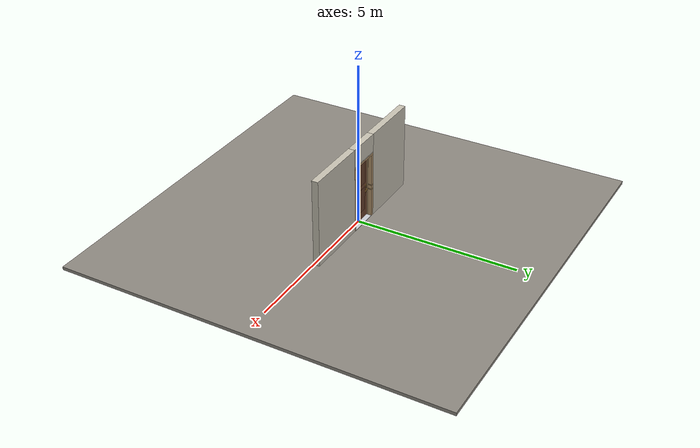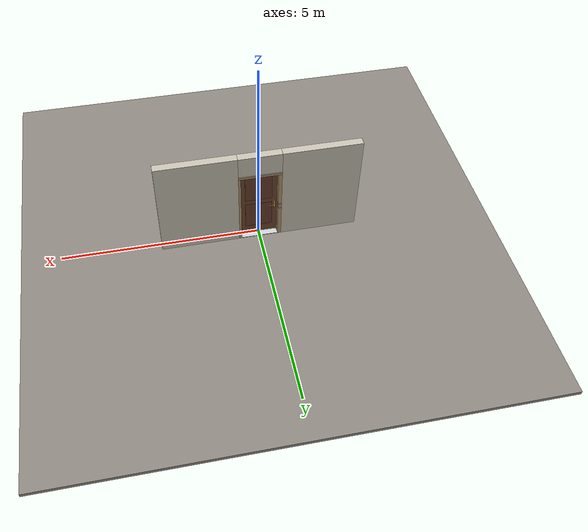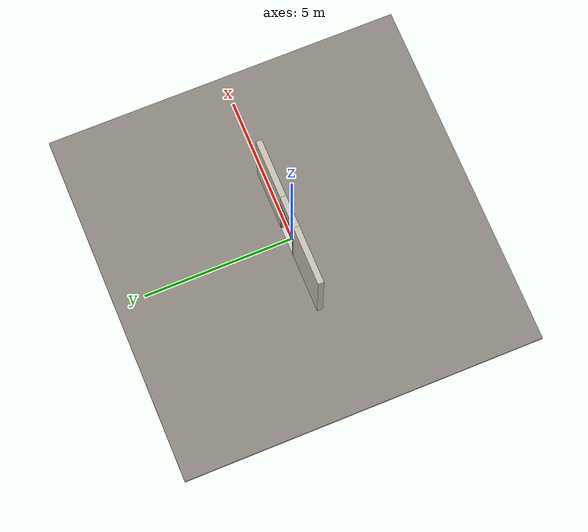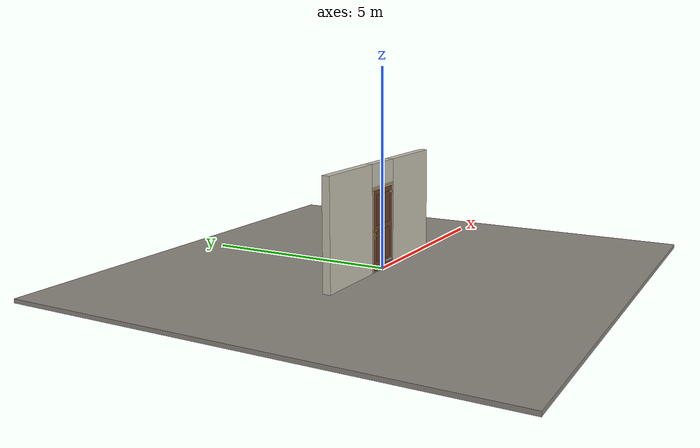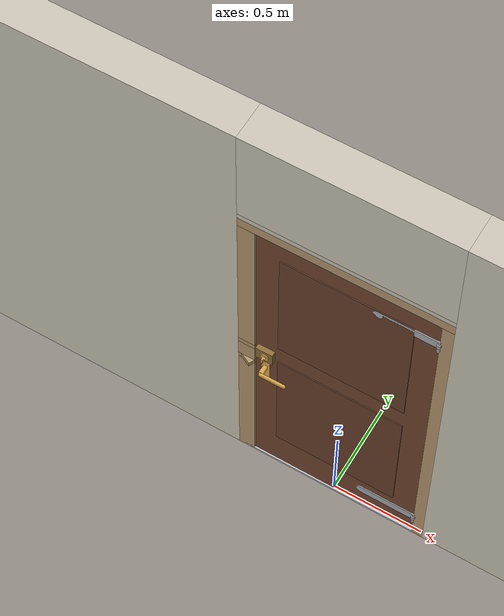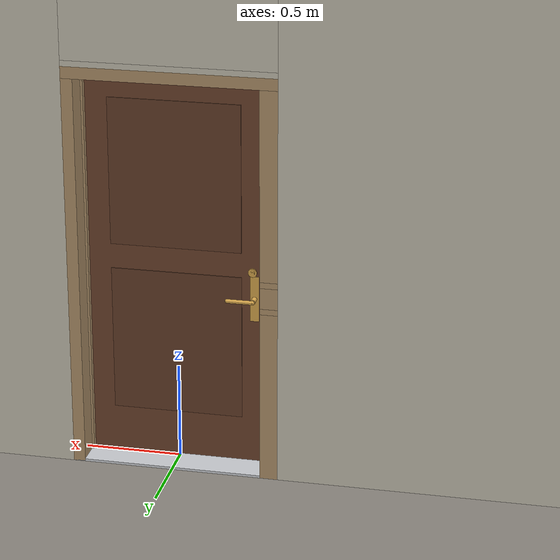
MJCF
<?xml version="1.0" ?>
<mujoco model="db0889_swing_single_full">
  <compiler angle="radian" meshdir="../../hardware" texturedir="../../textures" autolimits="true" inertiafromgeom="false"/>
  <option timestep="0.002" integrator="implicitfast" cone="elliptic" impratio="10" noslip_iterations="3">
    <flag multiccd="enable"/>
  </option>
  <size memory="16M"/>
  <default>
    <geom condim="4" solref="0.005 1" solimp="0.95 0.99 0.001"/>
    <joint solreflimit="0.005 1" solimplimit="0.95 0.99 0.001"/>
    <tendon solreflimit="0.005 1"/>
    <equality solref="0.002 1"/>
  </default>
  <visual>
    <headlight ambient="0.4 0.4 0.4" diffuse="0.7 0.7 0.7" specular="0.2 0.2 0.2"/>
    <quality shadowsize="4096"/>
    <map znear="0.01" zfar="60"/>
  </visual>
  <asset>
    <mesh name="cyl_face_e9e5036966" file="cyl_face_e9e5036966.obj"/>
    <mesh name="lever_6fbb1e9593" file="lever_6fbb1e9593.obj"/>
    <mesh name="strap_hinge_78d1bbb966" file="strap_hinge_78d1bbb966.obj"/>
    <mesh name="thumbturn_eb5c9899a3" file="thumbturn_eb5c9899a3.obj"/>
    <material name="mat_floor" rgba="0.55 0.53 0.5 1" specular="0.2" shininess="0.15" reflectance="0"/>
    <material name="mat_wall" rgba="0.78 0.76 0.7 1" specular="0.2" shininess="0.1" reflectance="0"/>
    <material name="mat_leaf" rgba="0.43 0.263 0.177 1" specular="0.2" shininess="0.4" reflectance="0"/>
    <material name="mat_leaf_panel" rgba="0.396 0.242 0.163 1" specular="0.2" shininess="0.4" reflectance="0"/>
    <material name="mat_hinge" rgba="0.65 0.66 0.68 1" specular="0.74" shininess="0.5" reflectance="0.36"/>
    <material name="mat_op_brass" rgba="0.85 0.66 0.3 1" specular="0.8" shininess="0.75" reflectance="0.4"/>
    <material name="mat_trim" rgba="0.85 0.66 0.3 1" specular="0.8" shininess="0.75" reflectance="0.4"/>
    <material name="mat_bolt" rgba="0.75 0.76 0.77 1" specular="0.8" shininess="0.65" reflectance="0.4"/>
    <material name="mat_night_latch" rgba="0.55 0.42 0.22 1" specular="0.74" shininess="0.45" reflectance="0.36"/>
    <material name="mat_deadbolt" rgba="0.85 0.66 0.3 1" specular="0.8" shininess="0.75" reflectance="0.4"/>
    <material name="mat_frame" rgba="0.7 0.58 0.42 1" specular="0.2" shininess="0.5" reflectance="0"/>
    <material name="mat_threshold" rgba="0.8 0.81 0.83 1" specular="0.8" shininess="0.6" reflectance="0.4"/>
    <texture name="skybox" type="skybox" builtin="gradient" rgb1="0.6 0.7 0.85" rgb2="0.9 0.92 0.95" width="256" height="256"/>
  </asset>
  <worldbody>
    <light name="sun" pos="1.5 -2.5 4" dir="-0.3 0.5 -0.8" directional="true" diffuse="0.8 0.8 0.8" specular="0.3 0.3 0.3" castshadow="true"/>
    <light name="fill" pos="-1.5 2.5 3" dir="0.3 -0.5 -0.7" directional="true" diffuse="0.35 0.35 0.4" castshadow="false"/>
    <camera name="robot_view" pos="0 -2.466687 1.734312" xyaxes="1 0 0 0 0.26963 0.962964" fovy="52"/>
    <camera name="far_view" pos="0 2.617687 1.734312" xyaxes="-1 0 0 0 -0.26963 0.962964" fovy="52"/>
    <camera name="iso" pos="-1.932062 -2.059938 2.141063" xyaxes="0.741536 -0.670913 0 0.242917 0.268487 0.932151" fovy="46"/>
    <camera name="detail_handle" pos="-0.1175 -0.8725 1.194" xyaxes="0.97561 0.219512 0 -0.070934 0.315262 0.94635" fovy="38"/>
    <geom name="floor" type="box" size="6 6 0.05" pos="0 0 -0.05" material="mat_floor" group="0" contype="1" conaffinity="1" friction="0.8 0.005 0.0001" density="2400"/>
    <geom name="wall_left" type="box" size="0.97475 0.1 1.35" pos="-1.52525 0.0755 1.35" material="mat_wall" group="0" contype="1" conaffinity="1" friction="0.6 0.005 0.0001" density="800"/>
    <geom name="wall_right" type="box" size="0.98975 0.1 1.35" pos="1.51025 0.0755 1.35" material="mat_wall" group="0" contype="1" conaffinity="1" friction="0.6 0.005 0.0001" density="800"/>
    <geom name="wall_header" type="box" size="0.5355 0.1 0.2825" pos="-0.015 0.0755 2.4175" material="mat_wall" group="0" contype="1" conaffinity="1" friction="0.6 0.005 0.0001" density="800"/>
    <geom name="hinge_pintle_0" type="cylinder" size="0.008 0.02" pos="0.4575 -0.0245 0.141" material="mat_hinge" group="1" contype="0" conaffinity="0" density="7850"/>
    <geom name="hinge_pintle_1" type="cylinder" size="0.008 0.02" pos="0.4575 -0.0245 1.865" material="mat_hinge" group="1" contype="0" conaffinity="0" density="7850"/>
    <geom name="leaf_deadbolt_strike_b" type="box" size="0.0155 0.003 0.0005" pos="-0.46 0 1.0355" quat="0.5 0.5 0.5 0.5" material="mat_deadbolt" group="1" contype="0" conaffinity="0" density="7800"/>
    <geom name="leaf_deadbolt_strike_l" type="box" size="0.003 0.0155 0.0005" pos="-0.46 -0.0125 1.054" quat="0.5 0.5 0.5 0.5" material="mat_deadbolt" group="1" contype="0" conaffinity="0" density="7800"/>
    <geom name="leaf_deadbolt_strike_t" type="box" size="0.0155 0.003 0.0005" pos="-0.46 0 1.0725" quat="0.5 0.5 0.5 0.5" material="mat_deadbolt" group="1" contype="0" conaffinity="0" density="7800"/>
    <geom name="leaf_deadbolt_strike_r" type="box" size="0.003 0.0155 0.0005" pos="-0.46 0.0125 1.054" quat="0.5 0.5 0.5 0.5" material="mat_deadbolt" group="1" contype="0" conaffinity="0" density="7800"/>
    <geom name="jamb_hinge" type="box" size="0.03 0.1 1.0225" pos="0.4905 0.0755 1.0225" material="mat_frame" group="0" contype="1" conaffinity="1" friction="0.6 0.005 0.0001" density="750"/>
    <geom name="strike_914_wall_n" type="box" size="0.045 0.0845 0.015" pos="-0.5055 0.091 0.914" material="mat_frame" group="0" contype="1" conaffinity="1" friction="0.6 0.005 0.0001" density="750"/>
    <geom name="strike_914_wall_p" type="box" size="0.045 0.008 0.015" pos="-0.5055 -0.0145 0.914" material="mat_frame" group="0" contype="1" conaffinity="1" friction="0.6 0.005 0.0001" density="750"/>
    <geom name="strike_914_ramp" type="box" size="0.045 0.016771 0.015" pos="-0.508249 -0.017375 0.914" quat="0.973249 0 0 -0.229753" material="mat_frame" group="0" contype="1" conaffinity="1" friction="0.12 0.005 0.0001" density="750"/>
    <geom name="strike_914_back" type="box" size="0.036 0.0065 0.015" pos="-0.5145 0 0.914" material="mat_frame" group="0" contype="1" conaffinity="1" friction="0.6 0.005 0.0001" density="750"/>
    <geom name="strike_1054_wall_n" type="box" size="0.045 0.083 0.0155" pos="-0.5055 0.0925 1.054" material="mat_frame" group="0" contype="1" conaffinity="1" friction="0.6 0.005 0.0001" density="750"/>
    <geom name="strike_1054_wall_p" type="box" size="0.045 0.0075 0.0155" pos="-0.5055 -0.017 1.054" material="mat_frame" group="0" contype="1" conaffinity="1" friction="0.6 0.005 0.0001" density="750"/>
    <geom name="strike_1054_back" type="box" size="0.035 0.0095 0.0155" pos="-0.5155 0 1.054" material="mat_frame" group="0" contype="1" conaffinity="1" friction="0.6 0.005 0.0001" density="750"/>
    <geom name="jamb_strike_0" type="box" size="0.045 0.1 0.4495" pos="-0.5055 0.0755 0.4495" material="mat_frame" group="0" contype="1" conaffinity="1" friction="0.6 0.005 0.0001" density="750"/>
    <geom name="jamb_strike_1" type="box" size="0.045 0.1 0.05475" pos="-0.5055 0.0755 0.98375" material="mat_frame" group="0" contype="1" conaffinity="1" friction="0.6 0.005 0.0001" density="750"/>
    <geom name="jamb_strike_2" type="box" size="0.045 0.1 0.48775" pos="-0.5055 0.0755 1.55725" material="mat_frame" group="0" contype="1" conaffinity="1" friction="0.6 0.005 0.0001" density="750"/>
    <geom name="jamb_head" type="box" size="0.5355 0.1 0.03" pos="-0.015 0.0755 2.075" material="mat_frame" group="0" contype="1" conaffinity="1" friction="0.6 0.005 0.0001" density="750"/>
    <geom name="head_stud" type="box" size="0.5355 0.1 0.015" pos="-0.015 0.0755 2.12" material="mat_wall" group="0" contype="1" conaffinity="1" friction="0.6 0.005 0.0001" density="500"/>
    <geom name="stop_hinge" type="box" size="0.0055 0.016 1.0225" pos="0.455 0.034 1.0225" material="mat_frame" group="0" contype="1" conaffinity="1" friction="0.6 0.005 0.0001" density="750"/>
    <geom name="stop_strike" type="box" size="0.0055 0.016 1.0225" pos="-0.455 0.034 1.0225" material="mat_frame" group="0" contype="1" conaffinity="1" friction="0.6 0.005 0.0001" density="750"/>
    <geom name="stop_head" type="box" size="0.4605 0.016 0.0055" pos="0 0.034 2.0395" material="mat_frame" group="0" contype="1" conaffinity="1" friction="0.6 0.005 0.0001" density="750"/>
    <geom name="threshold" type="box" size="0.5205 0.1 0.0065" pos="0 0.0755 0.0065" material="mat_threshold" group="0" contype="1" conaffinity="1" friction="0.5 0.005 0.0001" density="2700"/>
    <geom name="hinge_pintle_0_strap_0" type="box" size="0.0064 0.01775 0.016" pos="0.4575 0.00075 0.141" material="mat_hinge" group="1" contype="0" conaffinity="0" density="7850"/>
    <geom name="hinge_pintle_1_strap_0" type="box" size="0.0064 0.01775 0.016" pos="0.4575 0.00075 1.865" material="mat_hinge" group="1" contype="0" conaffinity="0" density="7850"/>
    <site name="approach_point" pos="0 -1.5 0" quat="1 0 0 0" size="0.05" rgba="0.2 0.9 0.2 0.5" group="4"/>
    <site name="goal_point" pos="0 1.5 0" quat="1 0 0 0" size="0.05" rgba="0.2 0.9 0.2 0.5" group="4"/>
    <site name="door_plane_center" pos="0 0 1.0225" quat="1 0 0 0" size="0.02" rgba="0.2 0.9 0.2 0.5" group="4"/>
    <body name="leaf" pos="0.4605 0 0">
      <inertial pos="-0.449005 -0.002175 1.028751" mass="26.160085" quat="0.500971 0.499239 -0.50078 0.499007" diaginertia="1.985728457 9.446816369 11.424794046"/>
      <joint name="leaf_hinge" type="hinge" axis="0 0 1" pos="-0.003 -0.0245 0" limited="true" range="0 1.745329" damping="0.30611" frictionloss="7.882549" armature="0.02"/>
      <geom name="leaf_slab" type="box" size="0.457 0.0175 1.012" pos="-0.46 0 1.029" material="mat_leaf" group="0" contype="1" conaffinity="1" friction="0.35 0.005 0.0001" density="1"/>
      <geom name="leaf_panel_0_n" type="box" size="0.33646 0.003 0.38254" pos="-0.46 -0.0205 0.64218" material="mat_leaf_panel" group="1" contype="0" conaffinity="0" density="1"/>
      <geom name="leaf_panel_0_p" type="box" size="0.33646 0.003 0.38254" pos="-0.46 0.0205 0.64218" material="mat_leaf_panel" group="1" contype="0" conaffinity="0" density="1"/>
      <geom name="leaf_panel_1_n" type="box" size="0.33646 0.003 0.38254" pos="-0.46 -0.0205 1.53726" material="mat_leaf_panel" group="1" contype="0" conaffinity="0" density="1"/>
      <geom name="leaf_panel_1_p" type="box" size="0.33646 0.003 0.38254" pos="-0.46 0.0205 1.53726" material="mat_leaf_panel" group="1" contype="0" conaffinity="0" density="1"/>
      <geom name="hinge_strap_0" type="mesh" mesh="strap_hinge_78d1bbb966" pos="-0.003 -0.0205 0.167" quat="0 0 0 1" material="mat_hinge" group="1" contype="0" conaffinity="0" density="7850"/>
      <geom name="hinge_strap_eye_0" type="cylinder" size="0.011 0.012" pos="-0.003 -0.0245 0.167" material="mat_hinge" group="1" contype="0" conaffinity="0" density="7850"/>
      <geom name="hinge_strap_neck_0" type="box" size="0.012 0.006 0.006" pos="-0.003 -0.0225 0.167" material="mat_hinge" group="1" contype="0" conaffinity="0" density="7850"/>
      <geom name="hinge_strap_1" type="mesh" mesh="strap_hinge_78d1bbb966" pos="-0.003 -0.0205 1.891" quat="0 0 0 1" material="mat_hinge" group="1" contype="0" conaffinity="0" density="7850"/>
      <geom name="hinge_strap_eye_1" type="cylinder" size="0.011 0.012" pos="-0.003 -0.0245 1.891" material="mat_hinge" group="1" contype="0" conaffinity="0" density="7850"/>
      <geom name="hinge_strap_neck_1" type="box" size="0.012 0.006 0.006" pos="-0.003 -0.0225 1.891" material="mat_hinge" group="1" contype="0" conaffinity="0" density="7850"/>
      <geom name="leaf_handle_escutcheon_n" type="box" size="0.0225 0.0015 0.12" pos="-0.862 -0.019 0.914" material="mat_op_brass" group="1" contype="0" conaffinity="0" density="3000"/>
      <geom name="leaf_handle_escutcheon_p" type="box" size="0.0225 0.0015 0.12" pos="-0.862 0.019 0.914" material="mat_op_brass" group="1" contype="0" conaffinity="0" density="3000"/>
      <geom name="leaf_latch_bolt_faceplate" type="box" size="0.0006 0.011 0.025" pos="-0.9164 0 0.914" material="mat_bolt" group="1" contype="0" conaffinity="0" density="8500"/>
      <geom name="leaf_night_latch_case" type="box" size="0.046 0.014 0.042" pos="-0.857 -0.0315 1.054" material="mat_night_latch" group="0" contype="1" conaffinity="1" friction="0.6 0.005 0.0001" density="2500"/>
      <geom name="leaf_deadbolt_faceplate" type="box" size="0.0006 0.014 0.0245" pos="-0.9164 0 1.054" material="mat_deadbolt" group="1" contype="0" conaffinity="0" density="8500"/>
      <geom name="leaf_deadbolt_cylinder_face" type="mesh" mesh="cyl_face_e9e5036966" pos="-0.852 0.0175 1.054" quat="0 0 0.707107 0.707107" material="mat_deadbolt" group="1" contype="0" conaffinity="0" density="7100"/>
      <site name="leaf_edge_mid" pos="-0.917 0 1.012" quat="1 0 0 0" size="0.02" rgba="0.2 0.9 0.2 0.5" group="4"/>
      <body name="leaf_handle" pos="-0.862 0 0.914">
        <inertial pos="0.040408 0 0" mass="0.828708" quat="0 0.707107 0.707107 0" diaginertia="0.001675757 0.003345416 0.004975176"/>
        <joint name="leaf_handle_hinge" type="hinge" axis="0 1 0" limited="true" range="0 0.7" damping="0.270114" frictionloss="0.064" stiffness="1.4" springref="-0.428571" armature="0.01"/>
        <geom name="leaf_handle_spindle" type="cylinder" size="0.006 0.0295" pos="0 0 0" quat="0.707107 -0.707107 0 0" material="mat_op_brass" group="1" contype="0" conaffinity="0" density="7850"/>
        <geom name="leaf_handle_lever_n" type="mesh" mesh="lever_6fbb1e9593" pos="0 -0.0175 0" quat="0 0 -0.707107 0.707107" material="mat_op_brass" group="1" contype="0" conaffinity="0" density="3000"/>
        <geom name="leaf_handle_lever_col_n" type="capsule" size="0.01 0.055" pos="0.065 -0.0725 0" quat="0.707107 0 0.707107 0" material="mat_op_brass" group="3" contype="1" conaffinity="1" rgba="0.8 0.3 0.3 0.25" friction="0.7 0.01 0.0001" density="3000"/>
        <geom name="leaf_handle_hub_col_n" type="cylinder" size="0.012 0.022" pos="0 -0.0475 0" quat="0.707107 -0.707107 0 0" material="mat_op_brass" group="3" contype="1" conaffinity="1" rgba="0.8 0.3 0.3 0.25" friction="0.6 0.005 0.0001" density="3000"/>
        <geom name="leaf_handle_lever_p" type="mesh" mesh="lever_6fbb1e9593" pos="0 0.0175 0" quat="0 0 0.707107 0.707107" material="mat_op_brass" group="1" contype="0" conaffinity="0" density="3000"/>
        <geom name="leaf_handle_lever_col_p" type="capsule" size="0.01 0.055" pos="0.065 0.0725 0" quat="0.707107 0 0.707107 0" material="mat_op_brass" group="3" contype="1" conaffinity="1" rgba="0.8 0.3 0.3 0.25" friction="0.7 0.01 0.0001" density="3000"/>
        <geom name="leaf_handle_hub_col_p" type="cylinder" size="0.012 0.022" pos="0 0.0475 0" quat="0.707107 -0.707107 0 0" material="mat_op_brass" group="3" contype="1" conaffinity="1" rgba="0.8 0.3 0.3 0.25" friction="0.6 0.005 0.0001" density="3000"/>
        <site name="leaf_handle_grip_n" pos="0.104 -0.0725 0" quat="1 0 0 0" size="0.012" rgba="0.2 0.9 0.2 0.5" group="4"/>
        <site name="leaf_handle_grip_p" pos="0.104 0.0725 0" quat="1 0 0 0" size="0.012" rgba="0.2 0.9 0.2 0.5" group="4"/>
      </body>
      <body name="leaf_latch_bolt" pos="-0.917 0 0.914">
        <inertial pos="0.008 0 0" mass="0.027149" quat="0 0 -0.707107 0.707107" diaginertia="0.000000328 0.000003943 0.000003943"/>
        <joint name="leaf_latch_bolt_slide" type="slide" axis="1 0 0" limited="true" range="0 0.014" damping="2" frictionloss="0.3" stiffness="400" springref="-0.01" armature="0.1"/>
        <geom name="leaf_latch_bolt_capsule" type="capsule" size="0.005 0.017" pos="0.008 0 0" quat="0.707107 0 -0.707107 0" material="mat_bolt" group="0" contype="1" conaffinity="1" friction="0.2 0.005 0.0001" density="8500"/>
      </body>
      <body name="leaf_deadbolt" pos="-0.917 0 1.054">
        <inertial pos="0.007 0 0" mass="0.1564" quat="0 0 0.707107 0.707107" diaginertia="0.000011482 0.000030915 0.000035724"/>
        <joint name="leaf_deadbolt_slide" type="slide" axis="1 0 0" limited="true" range="0 0.016" damping="5" frictionloss="1.5" armature="0.1"/>
        <geom name="leaf_deadbolt_box" type="box" size="0.023 0.008 0.0125" pos="0.007 0 0" material="mat_deadbolt" group="0" contype="1" conaffinity="1" friction="0.3 0.005 0.0001" density="8500"/>
      </body>
      <body name="leaf_deadbolt_thumbturn" pos="-0.852 -0.0455 1.054">
        <inertial pos="0 -0.012928 0" mass="0.178946" quat="0.5 0.5 0.5 0.5" diaginertia="0.000026045 0.000026215 0.000032438"/>
        <joint name="leaf_deadbolt_thumbturn_hinge" type="hinge" axis="0 1 0" limited="true" range="0 1" damping="0.05" frictionloss="0.25" armature="0.005"/>
        <geom name="leaf_deadbolt_thumbturn_mesh" type="mesh" mesh="thumbturn_eb5c9899a3" pos="0 0 0" quat="0 0 -0.707107 0.707107" material="mat_deadbolt" group="0" contype="1" conaffinity="1" friction="0.6 0.005 0.0001" density="7100"/>
        <geom name="leaf_deadbolt_thumbturn_col" type="box" size="0.006 0.012 0.016" pos="0 -0.02 0" material="mat_deadbolt" group="3" contype="1" conaffinity="1" rgba="0.8 0.3 0.3 0.25" friction="0.6 0.005 0.0001" density="7100"/>
      </body>
    </body>
  </worldbody>
  <tendon>
    <fixed name="leaf_latch_bolt_coupling" limited="true" range="0 10">
      <joint joint="leaf_latch_bolt_slide" coef="1"/>
      <joint joint="leaf_handle_hinge" coef="-0.021212"/>
    </fixed>
  </tendon>
  <equality>
    <joint name="leaf_deadbolt_couple" joint1="leaf_deadbolt_slide" joint2="leaf_deadbolt_thumbturn_hinge" polycoef="0 0.016 0 0 0" active="true"/>
  </equality>
  <contact>
    <exclude body1="leaf_deadbolt" body2="leaf_deadbolt_thumbturn"/>
  </contact>
  <sensor>
    <jointpos name="leaf_hinge_pos" joint="leaf_hinge"/>
    <jointvel name="leaf_hinge_vel" joint="leaf_hinge"/>
    <jointpos name="leaf_handle_hinge_pos" joint="leaf_handle_hinge"/>
    <jointvel name="leaf_handle_hinge_vel" joint="leaf_handle_hinge"/>
    <jointpos name="leaf_latch_bolt_slide_pos" joint="leaf_latch_bolt_slide"/>
    <jointvel name="leaf_latch_bolt_slide_vel" joint="leaf_latch_bolt_slide"/>
    <jointpos name="leaf_deadbolt_slide_pos" joint="leaf_deadbolt_slide"/>
    <jointvel name="leaf_deadbolt_slide_vel" joint="leaf_deadbolt_slide"/>
    <jointpos name="leaf_deadbolt_thumbturn_hinge_pos" joint="leaf_deadbolt_thumbturn_hinge"/>
    <jointvel name="leaf_deadbolt_thumbturn_hinge_vel" joint="leaf_deadbolt_thumbturn_hinge"/>
  </sensor>
</mujoco>
